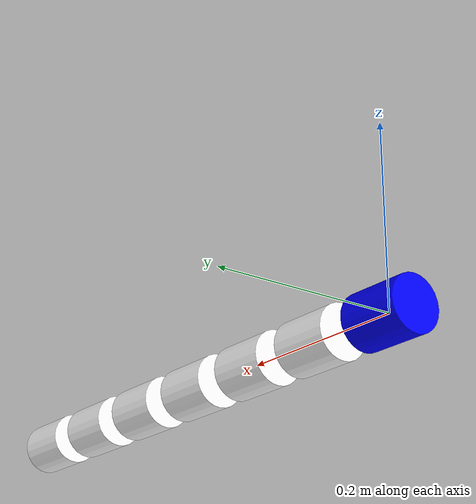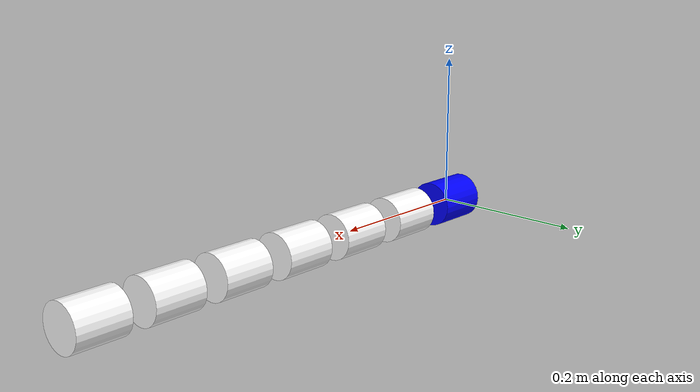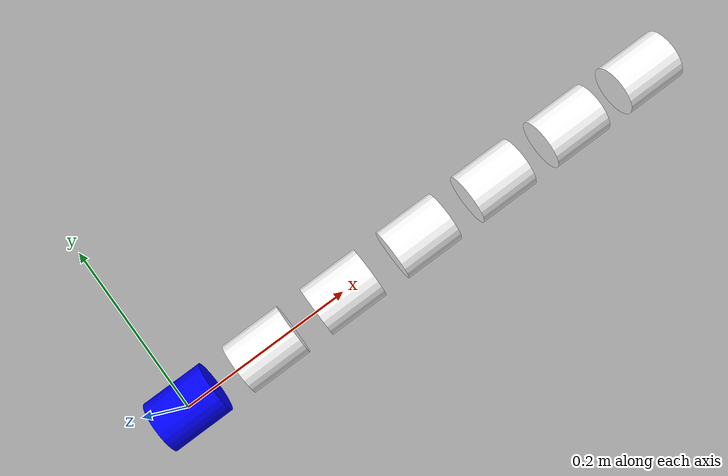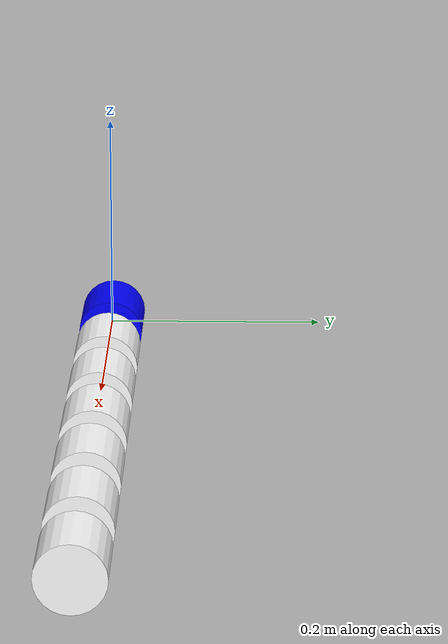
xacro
<?xml version="1.0"?>
<robot name="snake_bot" xmlns:xacro="http://www.ros.org/wiki/xacro">

    <xacro:property name="segment_radius" value="0.03"/>
    <xacro:property name="segment_length" value="0.07"/>
    <xacro:property name="segment_mass" value="0.5"/>

     <material name="Blue">
        <color rgba="0.0 0.0 1.0 1.0"/>
    </material>
    <material name="Red">
        <color rgba="1.0 0.0 0.0 1.0"/>
    </material>
    <material name="Green">
        <color rgba="0.0 1.0 0.0 1.0"/>
    </material>
    <material name="Yellow">
        <color rgba="1.0 1.0 0.0 1.0"/>
    </material>
    <material name="Orange">
        <color rgba="1.0 0.5 0.0 1.0"/>
    </material>
    <material name="Purple">
        <color rgba="0.5 0.0 1.0 1.0"/>
    </material>

    <!-- Macro for a single segment -->
    <xacro:macro name="snake_segment" params="parent_link child_link joint_name color">
        <joint name="${joint_name}" type="continuous">
            <parent link="${parent_link}"/>
            <child link="${child_link}"/>
            <origin xyz="0.1 0 0" rpy="0 0 0"/>
            <axis xyz="0 0 1"/>
        </joint>

        <link name="${child_link}">
            <inertial>
                <origin xyz="0 0 0"/>
                <mass value="${segment_mass}"/>
                <inertia ixx="0.01" iyy="0.01" izz="0.01" ixy="0.0" ixz="0.0" iyz="0.0"/>
            </inertial>
            <visual>
                <geometry>
                    <cylinder radius="${segment_radius}" length="${segment_length}"/>
                </geometry>
                <origin xyz="0 0 0" rpy="0 1.57 0"/>
                <material name="${color}">
                    <color rgba="1.0 1.0 1.0 1.0"/>
                </material>
            </visual>
            <collision>
                <geometry>
                    <cylinder radius="${segment_radius}" length="${segment_length}"/>
                </geometry>
            </collision>
        </link>
    </xacro:macro>

    <!-- Base Link -->
    <link name="base_link">
        <inertial>
            <origin xyz="0 0 0"/>
            <mass value="1.0"/>
            <inertia ixx="0.1" iyy="0.1" izz="0.1" ixy="0.0" ixz="0.0" iyz="0.0"/>
        </inertial>
        <visual>
            <geometry>
                <cylinder radius="${segment_radius}" length="${segment_length}"/>
            </geometry>
            <origin xyz="0 0 0" rpy="0 1.57 0"/>
            <material name="blue">
                <color rgba="0.0 0.0 1.0 1.0"/>
            </material>
        </visual>
        <collision>
            <geometry>
                <cylinder radius="${segment_radius}" length="${segment_length}"/>
            </geometry>
        </collision>
    </link>

    <!-- Adding Snake Segments -->
    <xacro:snake_segment parent_link="base_link" child_link="link1" joint_name="joint1" color="Purple"/>
    <xacro:snake_segment parent_link="link1" child_link="link2" joint_name="joint2" color="Red"/>
    <xacro:snake_segment parent_link="link2" child_link="link3" joint_name="joint3" color="Green"/>
    <xacro:snake_segment parent_link="link3" child_link="link4" joint_name="joint4" color="Yellow"/>
    <xacro:snake_segment parent_link="link4" child_link="link5" joint_name="joint5" color="Orange"/>
    <xacro:snake_segment parent_link="link5" child_link="link6" joint_name="joint6" color="Blue"/>

</robot>
